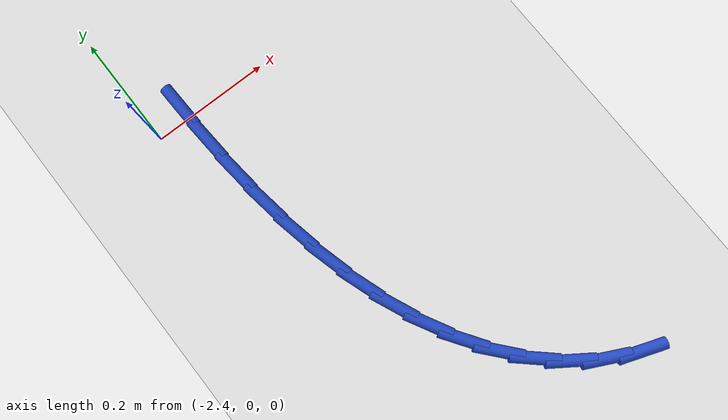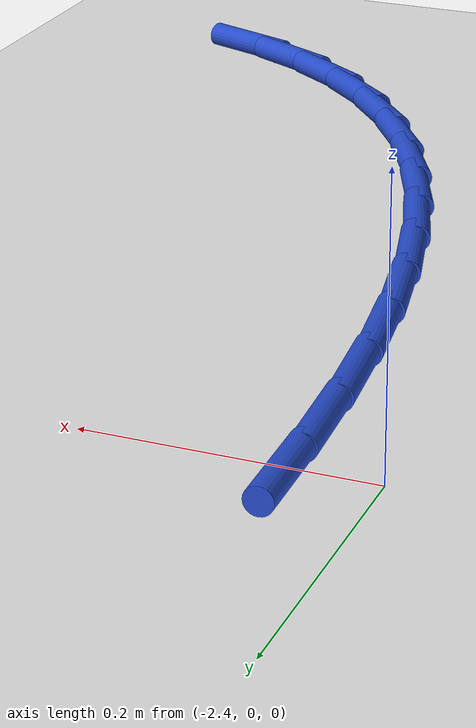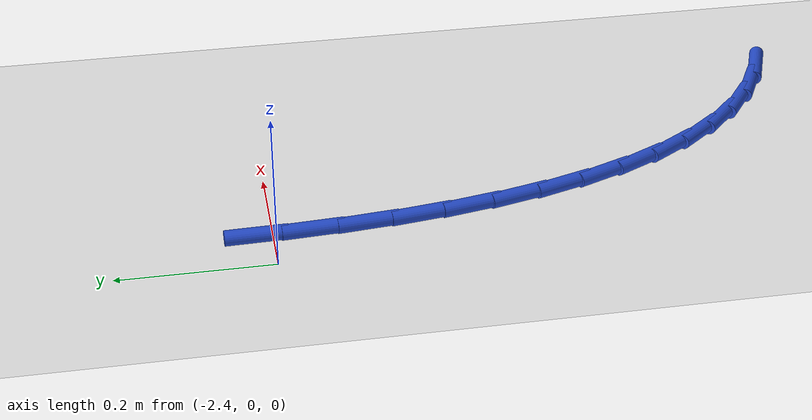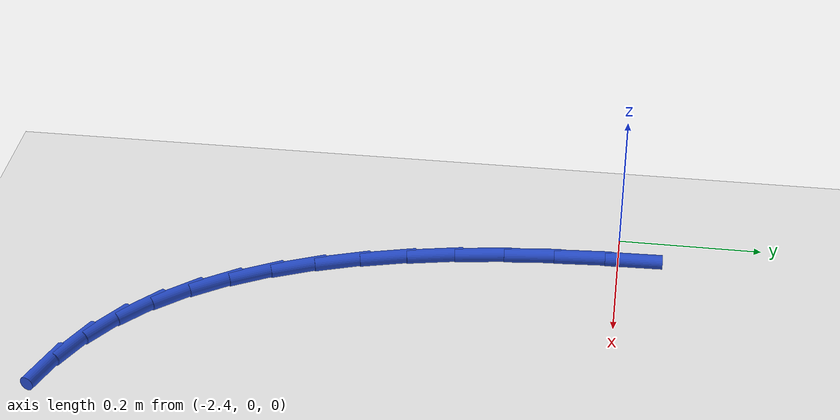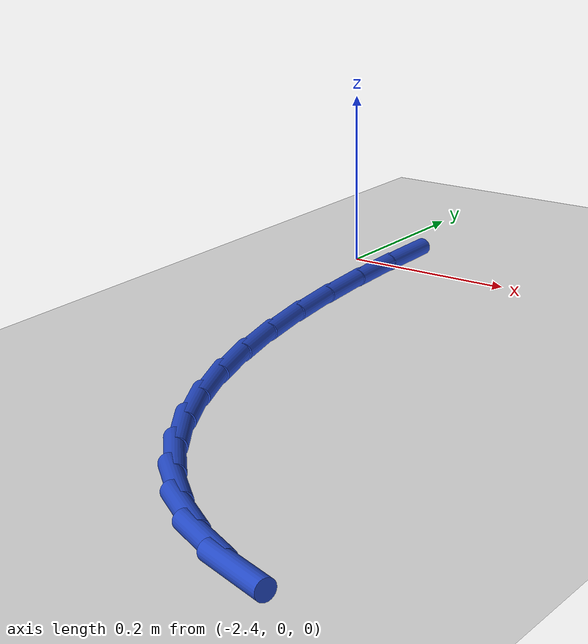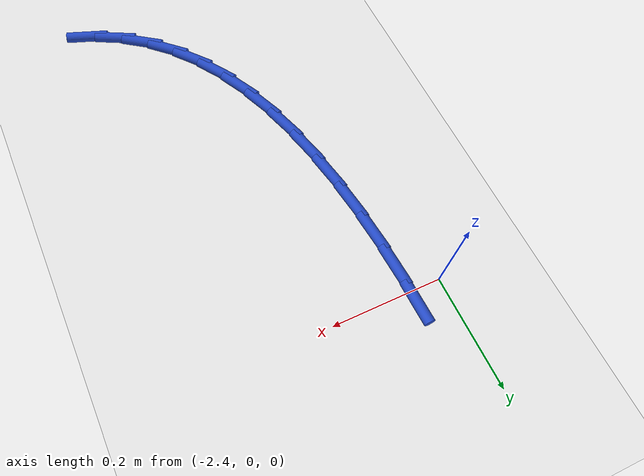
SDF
<sdf version="1.6">
 <world name="default">
  <model name="ground_plane">
   <static>1</static>
   <link name="link">
    <collision name="collision">
     <geometry><plane><normal>0 0 1</normal><size>100 100</size></plane></geometry>
     <surface><friction><ode><mu>100</mu><mu2>50</mu2></ode></friction></surface>
    </collision>
    <visual name="visual">
     <cast_shadows>0</cast_shadows>
     <geometry><plane><normal>0 0 1</normal><size>100 100</size></plane></geometry>
     <material>
      <script><uri>file://media/materials/scripts/gazebo.material</uri><name>Gazebo/WhiteGlow</name></script>
     </material>
    </visual>
   </link>
  </model>
  <model name="line">
   <link name="link_61">
    <pose>-2.343599681336612 0.021514370850942644 0.01 0 1.57 -1.5433223297394145</pose>
    <collision name="collision">
     <geometry><cylinder><radius>0.01</radius><length>0.08</length></cylinder></geometry>
    </collision>
    <visual name="visual">
     <material>
      <script><name>Gazebo/Blue</name><uri>file://media/materials/scripts/gazebo.material</uri></script>
     </material>
     <geometry><cylinder><radius>0.01</radius><length>0.08</length></cylinder></geometry>
    </visual>
   </link>
   <link name="link_62">
    <pose>-2.3416380688746825 -0.04986653808712343 0.01 0 1.57 -1.5085967707552466</pose>
    <collision name="collision">
     <geometry><cylinder><radius>0.01</radius><length>0.08</length></cylinder></geometry>
    </collision>
    <visual name="visual">
     <material>
      <script><name>Gazebo/Blue</name><uri>file://media/materials/scripts/gazebo.material</uri></script>
     </material>
     <geometry><cylinder><radius>0.01</radius><length>0.08</length></cylinder></geometry>
    </visual>
   </link>
   <link name="link_63">
    <pose>-2.337258087433896 -0.12019391435968807 0.01 0 1.57 -1.4692667671401387</pose>
    <collision name="collision">
     <geometry><cylinder><radius>0.01</radius><length>0.08</length></cylinder></geometry>
    </collision>
    <visual name="visual">
     <material>
      <script><name>Gazebo/Blue</name><uri>file://media/materials/scripts/gazebo.material</uri></script>
     </material>
     <geometry><cylinder><radius>0.01</radius><length>0.08</length></cylinder></geometry>
    </visual>
   </link>
   <link name="link_64">
    <pose>-2.3302428321231923 -0.189052025706879 0.01 0 1.57 -1.424514475979367</pose>
    <collision name="collision">
     <geometry><cylinder><radius>0.01</radius><length>0.08</length></cylinder></geometry>
    </collision>
    <visual name="visual">
     <material>
      <script><name>Gazebo/Blue</name><uri>file://media/materials/scripts/gazebo.material</uri></script>
     </material>
     <geometry><cylinder><radius>0.01</radius><length>0.08</length></cylinder></geometry>
    </visual>
   </link>
   <link name="link_65">
    <pose>-2.320375398051507 -0.2560251398688267 0.01 0 1.57 -1.3733704251398196</pose>
    <collision name="collision">
     <geometry><cylinder><radius>0.01</radius><length>0.08</length></cylinder></geometry>
    </collision>
    <visual name="visual">
     <material>
      <script><name>Gazebo/Blue</name><uri>file://media/materials/scripts/gazebo.material</uri></script>
     </material>
     <geometry><cylinder><radius>0.01</radius><length>0.08</length></cylinder></geometry>
    </visual>
   </link>
   <link name="link_66">
    <pose>-2.3074388803277808 -0.32069752458566153 0.01 0 1.57 -1.3147060426063506</pose>
    <collision name="collision">
     <geometry><cylinder><radius>0.01</radius><length>0.08</length></cylinder></geometry>
    </collision>
    <visual name="visual">
     <material>
      <script><name>Gazebo/Blue</name><uri>file://media/materials/scripts/gazebo.material</uri></script>
     </material>
     <geometry><cylinder><radius>0.01</radius><length>0.08</length></cylinder></geometry>
    </visual>
   </link>
   <link name="link_67">
    <pose>-2.2912163740609524 -0.3826534475975117 0.01 0 1.57 -1.2472492596124547</pose>
    <collision name="collision">
     <geometry><cylinder><radius>0.01</radius><length>0.08</length></cylinder></geometry>
    </collision>
    <visual name="visual">
     <material>
      <script><name>Gazebo/Blue</name><uri>file://media/materials/scripts/gazebo.material</uri></script>
     </material>
     <geometry><cylinder><radius>0.01</radius><length>0.08</length></cylinder></geometry>
    </visual>
   </link>
   <link name="link_68">
    <pose>-2.2714909743599585 -0.44147717664450714 0.01 0 1.57 -1.1696463745792816</pose>
    <collision name="collision">
     <geometry><cylinder><radius>0.01</radius><length>0.08</length></cylinder></geometry>
    </collision>
    <visual name="visual">
     <material>
      <script><name>Gazebo/Blue</name><uri>file://media/materials/scripts/gazebo.material</uri></script>
     </material>
     <geometry><cylinder><radius>0.01</radius><length>0.08</length></cylinder></geometry>
    </visual>
   </link>
   <link name="link_69">
    <pose>-2.248045776333739 -0.4967529794667779 0.01 0 1.57 -1.0806050011619306</pose>
    <collision name="collision">
     <geometry><cylinder><radius>0.01</radius><length>0.08</length></cylinder></geometry>
    </collision>
    <visual name="visual">
     <material>
      <script><name>Gazebo/Blue</name><uri>file://media/materials/scripts/gazebo.material</uri></script>
     </material>
     <geometry><cylinder><radius>0.01</radius><length>0.08</length></cylinder></geometry>
    </visual>
   </link>
   <link name="link_70">
    <pose>-2.2206638750912315 -0.5480651238044538 0.01 0 1.57 -0.9791589549208024</pose>
    <collision name="collision">
     <geometry><cylinder><radius>0.01</radius><length>0.08</length></cylinder></geometry>
    </collision>
    <visual name="visual">
     <material>
      <script><name>Gazebo/Blue</name><uri>file://media/materials/scripts/gazebo.material</uri></script>
     </material>
     <geometry><cylinder><radius>0.01</radius><length>0.08</length></cylinder></geometry>
    </visual>
   </link>
   <link name="link_71">
    <pose>-2.1891283657413756 -0.5949978773976634 0.01 0 1.57 -0.8650768419517725</pose>
    <collision name="collision">
     <geometry><cylinder><radius>0.01</radius><length>0.08</length></cylinder></geometry>
    </collision>
    <visual name="visual">
     <material>
      <script><name>Gazebo/Blue</name><uri>file://media/materials/scripts/gazebo.material</uri></script>
     </material>
     <geometry><cylinder><radius>0.01</radius><length>0.08</length></cylinder></geometry>
    </visual>
   </link>
   <link name="link_72">
    <pose>-2.153222343393109 -0.6371355079865368 0.01 0 1.57 -0.7393618037084132</pose>
    <collision name="collision">
     <geometry><cylinder><radius>0.01</radius><length>0.08</length></cylinder></geometry>
    </collision>
    <visual name="visual">
     <material>
      <script><name>Gazebo/Blue</name><uri>file://media/materials/scripts/gazebo.material</uri></script>
     </material>
     <geometry><cylinder><radius>0.01</radius><length>0.08</length></cylinder></geometry>
    </visual>
   </link>
   <link name="link_73">
    <pose>-2.11272890315537 -0.6740622833112034 0.01 0 1.57 -0.6046516587691996</pose>
    <collision name="collision">
     <geometry><cylinder><radius>0.01</radius><length>0.08</length></cylinder></geometry>
    </collision>
    <visual name="visual">
     <material>
      <script><name>Gazebo/Blue</name><uri>file://media/materials/scripts/gazebo.material</uri></script>
     </material>
     <geometry><cylinder><radius>0.01</radius><length>0.08</length></cylinder></geometry>
    </visual>
   </link>
   <link name="link_74">
    <pose>-2.067431140137098 -0.7053624711117937 0.01 0 1.57 -0.4659561680308333</pose>
    <collision name="collision">
     <geometry><cylinder><radius>0.01</radius><length>0.08</length></cylinder></geometry>
    </collision>
    <visual name="visual">
     <material>
      <script><name>Gazebo/Blue</name><uri>file://media/materials/scripts/gazebo.material</uri></script>
     </material>
     <geometry><cylinder><radius>0.01</radius><length>0.08</length></cylinder></geometry>
    </visual>
   </link>
   <link name="link_75">
    <pose>-2.017135038728207 -0.7306558291985633 0.01 0 1.57 -0.34944244485993875</pose>
    <collision name="collision">
     <geometry><cylinder><radius>0.01</radius><length>0.08</length></cylinder></geometry>
    </collision>
    <visual name="visual">
     <material>
      <script><name>Gazebo/Blue</name><uri>file://media/materials/scripts/gazebo.material</uri></script>
     </material>
     <geometry><cylinder><radius>0.01</radius><length>0.08</length></cylinder></geometry>
    </visual>
   </link>
  </model>
 </world>
</sdf>
